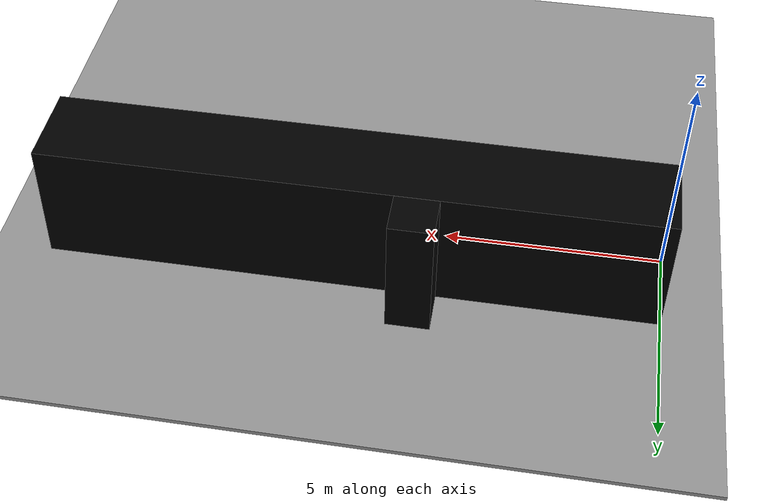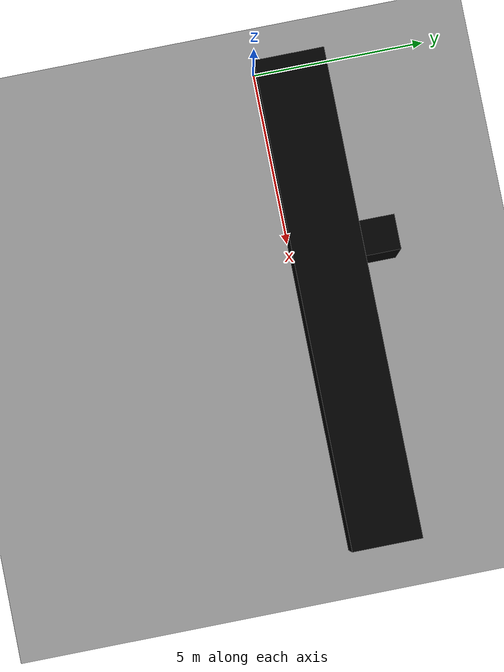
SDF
<sdf version="1.7">
 <world name="default">
  <model name="ground_plane">
   <static>1</static>
   <link name="link">
    <collision name="collision">
     <geometry><plane><normal>0 0 1</normal><size>100 100</size></plane></geometry>
     <surface><friction><ode><mu>100</mu><mu2>50</mu2></ode></friction></surface>
    </collision>
    <visual name="visual">
     <cast_shadows>0</cast_shadows>
     <geometry><plane><normal>0 0 1</normal><size>100 100</size></plane></geometry>
     <material>
      <script><uri>file://media/materials/scripts/gazebo.material</uri><name>Gazebo/Grey</name></script>
     </material>
    </visual>
   </link>
  </model>
  <model name="wood_cube_2_5cm">
   <link name="link">
    <pose>0 0 0.0125 0 -0 0</pose>
    <inertial>
     <mass>0.0073</mass>
     <inertia>
      <ixx>7.60417e-07</ixx>
      <ixy>0</ixy>
      <ixz>0</ixz>
      <iyy>7.60417e-07</iyy>
      <iyz>0</iyz>
      <izz>7.60417e-07</izz>
     </inertia>
    </inertial>
    <collision name="collision">
     <geometry><box><size>0.025 0.025 0.025</size></box></geometry>
     <surface>
      <contact>
       <poissons_ratio>0.347</poissons_ratio>
       <elastic_modulus>8.8e+09</elastic_modulus>
       <ode><kp>100000</kp><kd>100</kd><max_vel>100</max_vel><min_depth>0.001</min_depth></ode>
      </contact>
      <friction>
       <torsional>
        <coefficient>1</coefficient>
        <use_patch_radius>0</use_patch_radius>
        <surface_radius>0.01</surface_radius>
       </torsional>
      </friction>
     </surface>
    </collision>
    <visual name="visual">
     <geometry><box><size>0.025 0.025 0.025</size></box></geometry>
     <material>
      <script><uri>file://media/materials/scripts/gazebo.material</uri><name>Gazebo/Wood</name></script>
     </material>
    </visual>
   </link>
   <pose>9.08294 -8.46454 -0.000453 -1e-06 0.034828 0</pose>
  </model>
  <model name="ground_plane_0">
   <static>1</static>
   <link name="link">
    <collision name="collision">
     <geometry><plane><normal>0 0 1</normal><size>100 100</size></plane></geometry>
     <surface>
      <contact><collide_bitmask>65535</collide_bitmask></contact>
      <friction><ode><mu>100</mu><mu2>50</mu2></ode></friction>
     </surface>
    </collision>
    <visual name="visual">
     <cast_shadows>0</cast_shadows>
     <geometry><plane><normal>0 0 1</normal><size>100 100</size></plane></geometry>
     <material>
      <script><uri>file://media/materials/scripts/gazebo.material</uri><name>Gazebo/Grey</name></script>
     </material>
    </visual>
   </link>
   <pose>5.30691 -0.598783 0 0 -0 0</pose>
  </model>
  <model name="brick_black_1x1">
   <link name="chassis">
    <pose>0 0 1.5 0 -0 0</pose>
    <inertial>
     <mass>1</mass>
     <inertia><ixx>1</ixx><ixy>0</ixy><ixz>0</ixz><iyy>1</iyy><iyz>0</iyz><izz>1</izz></inertia>
    </inertial>
    <visual name="visual">
     <geometry><mesh><uri>model://brick_box_3x1x3/meshes/simple_box.dae</uri><scale>1 1 3</scale></mesh></geometry>
     <material>
      <script>
       <uri>model://brick_box_3x1x3/materials/scripts</uri>
       <uri>model://brick_box_3x1x3/materials/textures</uri>
       <name>BrickBox/Diffuse</name>
      </script>
      <shader type="vertex"><normal_map>__default__</normal_map></shader>
      <ambient>0 0 0 1</ambient>
      <diffuse>0 0 0 1</diffuse>
      <specular>0 0 0 1</specular>
      <emissive>0 0 0 1</emissive>
      <lighting>1</lighting>
     </material>
    </visual>
    <collision name="collision">
     <geometry><box><size>1 1 3</size></box></geometry>
     <surface>
      <friction>
       <ode><mu>1</mu><mu2>1</mu2><fdir1>0 0 0</fdir1><slip1>0</slip1><slip2>0</slip2></ode>
       <torsional>
        <coefficient>1</coefficient>
        <patch_radius>0</patch_radius>
        <surface_radius>0</surface_radius>
        <use_patch_radius>1</use_patch_radius>
        <ode><slip>0</slip></ode>
       </torsional>
      </friction>
      <bounce><restitution_coefficient>0</restitution_coefficient><threshold>1e+06</threshold></bounce>
      <contact>
       <collide_without_contact>0</collide_without_contact>
       <collide_without_contact_bitmask>1</collide_without_contact_bitmask>
       <collide_bitmask>1</collide_bitmask>
       <ode>
        <soft_cfm>0</soft_cfm>
        <soft_erp>0.2</soft_erp>
        <kp>1e+13</kp>
        <kd>1</kd>
        <max_vel>0.01</max_vel>
        <min_depth>0</min_depth>
       </ode>
       <bullet>
        <split_impulse>1</split_impulse>
        <split_impulse_penetration_threshold>-0.01</split_impulse_penetration_threshold>
        <soft_cfm>0</soft_cfm>
        <soft_erp>0.2</soft_erp>
        <kp>1e+13</kp>
        <kd>1</kd>
       </bullet>
      </contact>
     </surface>
    </collision>
   </link>
   <static>1</static>
   <pose>5.5 2.5 0 0 -0 0</pose>
  </model>
  <model name="brick_black_14x2">
   <link name="chassis">
    <pose>0 0 1.5 0 -0 0</pose>
    <inertial>
     <mass>1</mass>
     <inertia><ixx>1</ixx><ixy>0</ixy><ixz>0</ixz><iyy>1</iyy><iyz>0</iyz><izz>1</izz></inertia>
    </inertial>
    <visual name="visual">
     <geometry>
      <mesh><uri>model://brick_box_3x1x3/meshes/simple_box.dae</uri><scale>14 2 3</scale></mesh>
     </geometry>
     <material>
      <script>
       <uri>model://brick_box_3x1x3/materials/scripts</uri>
       <uri>model://brick_box_3x1x3/materials/textures</uri>
       <name>BrickBox/Diffuse</name>
      </script>
      <shader type="vertex"><normal_map>__default__</normal_map></shader>
      <ambient>0 0 0 1</ambient>
      <diffuse>0 0 0 1</diffuse>
      <specular>0 0 0 1</specular>
      <emissive>0 0 0 1</emissive>
      <lighting>1</lighting>
     </material>
    </visual>
    <collision name="collision">
     <geometry><box><size>14 2 3</size></box></geometry>
     <surface>
      <friction>
       <ode><mu>1</mu><mu2>1</mu2><fdir1>0 0 0</fdir1><slip1>0</slip1><slip2>0</slip2></ode>
       <torsional>
        <coefficient>1</coefficient>
        <patch_radius>0</patch_radius>
        <surface_radius>0</surface_radius>
        <use_patch_radius>1</use_patch_radius>
        <ode><slip>0</slip></ode>
       </torsional>
      </friction>
      <bounce><restitution_coefficient>0</restitution_coefficient><threshold>1e+06</threshold></bounce>
      <contact>
       <collide_without_contact>0</collide_without_contact>
       <collide_without_contact_bitmask>1</collide_without_contact_bitmask>
       <collide_bitmask>1</collide_bitmask>
       <ode>
        <soft_cfm>0</soft_cfm>
        <soft_erp>0.2</soft_erp>
        <kp>1e+13</kp>
        <kd>1</kd>
        <max_vel>0.01</max_vel>
        <min_depth>0</min_depth>
       </ode>
       <bullet>
        <split_impulse>1</split_impulse>
        <split_impulse_penetration_threshold>-0.01</split_impulse_penetration_threshold>
        <soft_cfm>0</soft_cfm>
        <soft_erp>0.2</soft_erp>
        <kp>1e+13</kp>
        <kd>1</kd>
       </bullet>
      </contact>
     </surface>
    </collision>
   </link>
   <static>1</static>
   <pose>7 1 0 0 -0 0</pose>
  </model>
 </world>
</sdf>
